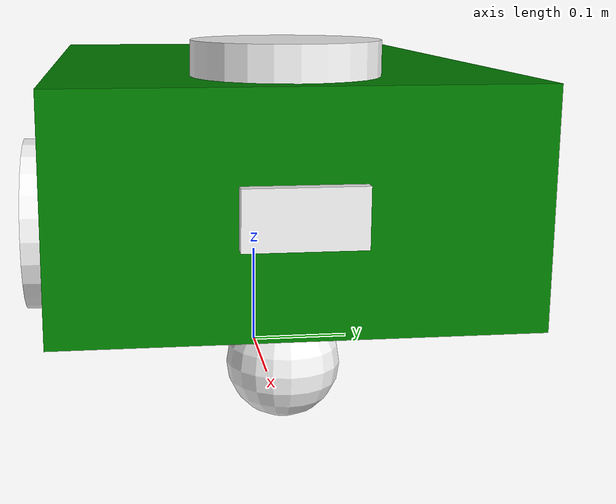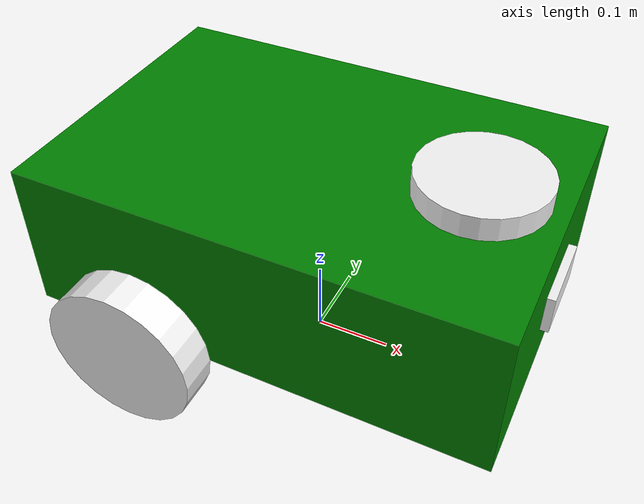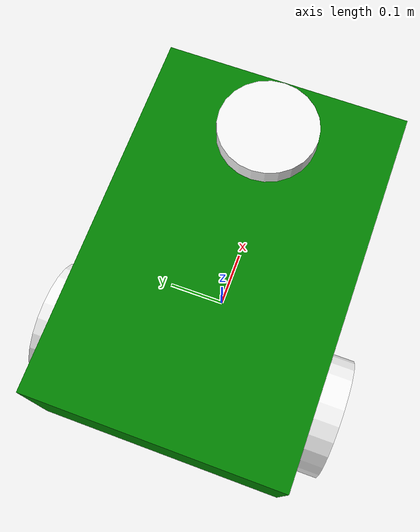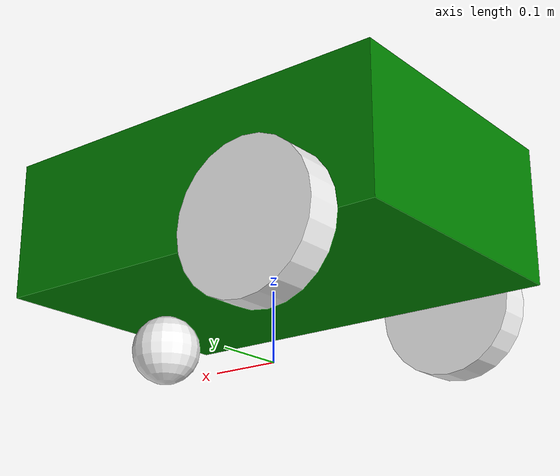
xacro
<?xml version="1.0"?>
<robot name="roam" xmlns:xacro="http://www.ros.org/wiki/xacro">

    <xacro:include filename="common_properties.xacro" />
    <xacro:include filename="mobile_base.xacro" />
    <xacro:include filename="lidar.xacro" />
    <xacro:include filename="camera.xacro" />
    <xacro:include filename="mobile_base_gazebo.xacro" />

</robot>

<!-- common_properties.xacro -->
<robot xmlns:xacro="http://www.ros.org/wiki/xacro">

    <material name="green">
        <color rgba="0 0.5 0 1" />
    </material>

    <material name="grey">
        <color rgba="0.95 0.95 0.95 1" />
    </material>

    <xacro:macro name="box_inertia" params="m x y z o_xyz o_rpy">
        <inertial>
            <mass value="${m}" />
            <origin xyz="${o_xyz}" rpy="${o_rpy}" />
            <inertia ixx="${(m/12) * (y*y + z*z)}" ixy="0" ixz="0"
                     iyy="${(m/12) * (x*x + z*z)}" iyz="0"
                     izz="${(m/12) * (x*x + y*y)}" />
        </inertial>
    </xacro:macro>

    <xacro:macro name="cylinder_inertia" params="m r h o_xyz o_rpy">
        <inertial>
            <mass value="${m}" />
            <origin xyz="${o_xyz}" rpy="${o_rpy}" />
            <inertia ixx="${(m/12) * (3*r*r + h*h)}" ixy="0" ixz="0"
                      iyy="${(m/12) * (3*r*r + h*h)}" iyz="0"
                      izz="${(m*r*r)/2}" />
        </inertial>
    </xacro:macro>

    <xacro:macro name="sphere_inertia" params="m r o_xyz o_rpy" >
        <inertial>
            <mass value="${m}" />
            <origin xyz="${o_xyz}" rpy="${o_rpy}" />
            <inertia ixx="${(2*m*r*r)/5}" ixy="0" ixz="0"
                    iyy="${(2*m*r*r)/5}" iyz="0"
                    izz="${(2*m*r*r)/5}" />
        </inertial>
    </xacro:macro>

</robot>

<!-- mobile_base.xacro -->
<robot xmlns:xacro="http://www.ros.org/wiki/xacro">

    <xacro:property name="base_length" value="0.6" />
    <xacro:property name="base_width" value="0.4" />
    <xacro:property name="base_height" value="0.2" />
    <xacro:property name="wheel_radius" value="0.1" />
    <xacro:property name="wheel_length" value="0.05" />

    <link name="base_footprint" />

    <link name="base_link">
        <visual>
            <geometry>
                <box size="${base_length} ${base_width} ${base_height}" />
            </geometry>
            <origin xyz="0 0 ${base_height / 2.0}" rpy="0 0 0" />
            <material name="green" />
        </visual>

        <collision>
            <geometry>
                <box size="${base_length} ${base_width} ${base_height}" />
            </geometry>
            <origin xyz="0 0 ${base_height / 2.0}" rpy="0 0 0" />
        </collision>

        <xacro:box_inertia m="5.0" x="${base_length}" y="${base_width}" z="${base_height}"
                           o_xyz="0 0 ${base_height / 2.0}" o_rpy="0 0 0" />
    </link>

    <xacro:macro name="wheel_link" params="prefix" >
        <link name="${prefix}_wheel_link" >
            <visual>
                <geometry>
                    <cylinder radius="${wheel_radius}" length="${wheel_length}"/>
                </geometry>
                <origin xyz="0 0 0" rpy="${pi / 2.0} 0 0" />
                <material name="grey" />
            </visual>

            <collision>
                <geometry>
                    <sphere radius="${wheel_radius}" />
                </geometry>
                <origin xyz="0 0 0" rpy="0 0 0" />
            </collision>

            <xacro:cylinder_inertia m="1.0" r="${wheel_radius}" h="${wheel_length}"
                                    o_xyz="0 0 0" o_rpy="${pi / 2.0} 0 0" />
        </link>
    </xacro:macro>

    <xacro:wheel_link prefix="right" />

    <xacro:wheel_link prefix="left" />

    <link name="caster_wheel_link">
        <visual>
            <geometry>
                <sphere radius="${wheel_radius / 2.0}" />
            </geometry>
            <origin xyz="0 0 0" rpy="0 0 0" />
            <material name="grey" />
        </visual>

        <collision>
            <geometry>
                <sphere radius="${wheel_radius / 2.0}" />
            </geometry>
            <origin xyz="0 0 0" rpy="0 0 0" />
        </collision>

        <xacro:sphere_inertia m="0.5" r="${wheel_radius / 2.0}"
                              o_xyz="0 0 0" o_rpy="0 0 0" />
    </link>

    <joint name="base_footprint_base_joint" type="fixed">
        <parent link="base_footprint" />
        <child link="base_link" />
        <origin xyz="0 0 ${wheel_radius}" rpy="0 0 0" />
    </joint>

    <joint name="base_right_wheel_joint" type="continuous">
        <parent link="base_link" />
        <child link="right_wheel_link" />
        <origin xyz="${-base_length / 4.0} ${-((base_width + wheel_length) / 2.0)} 0" rpy="0 0 0" />
        <axis xyz="0 1 0" />
    </joint>

    <joint name="base_left_wheel_joint" type="continuous">
        <parent link="base_link" />
        <child link="left_wheel_link" />
        <origin xyz="${-base_length / 4.0} ${(base_width + wheel_length) / 2.0} 0" rpy="0 0 0" />
        <axis xyz="0 1 0" />
    </joint>

    <joint name="base_caster_wheel_joint" type="fixed">
        <parent link="base_link" />
        <child link="caster_wheel_link" />
        <origin xyz="${base_length / 3.0} 0 ${-wheel_radius / 2.0}" rpy="0 0 0" />
    </joint>

</robot>

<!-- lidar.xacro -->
<robot xmlns:xacro="http://www.ros.org/wiki/xacro">
    <xacro:property name="lidar_frame_radius" value="0.08" />
    <xacro:property name="lidar_frame_length" value="0.03" />

    <link name="lidar_frame">
        <visual>
            <geometry>
                <cylinder radius="${lidar_frame_radius}" length="${lidar_frame_length}" />
            </geometry>
            <origin xyz="0 0 ${lidar_frame_length / 2}" rpy="0 0 0" />
            <material name="grey" />
        </visual>
        <collision>
            <geometry>
                <cylinder radius="${lidar_frame_radius}" length="${lidar_frame_length}" />
            </geometry>
            <origin xyz="0 0 ${lidar_frame_length / 2}" rpy="0 0 0" />
        </collision>
        <xacro:cylinder_inertia m="0.1" r="${lidar_frame_radius}" h="${lidar_frame_length}"
            o_xyz="0 0 ${lidar_frame_length / 2}" o_rpy="0 0 0" />
    </link>

    <joint name="base_link_lidar_frame_joint" type="fixed">
        <parent link="base_link" />
        <child link="lidar_frame" />
        <origin xyz="${base_length / 3} 0 ${base_height}" rpy="0 0 0" />
    </joint>

    <gazebo reference="lidar_frame">
    <sensor name="lidar" type="gpu_lidar">
      <always_on>true</always_on>
      <visualize>true</visualize>
      <update_rate>10</update_rate>
      <topic>scan</topic>
      <gz_frame_id>lidar_link</gz_frame_id>
      <lidar>
        <scan>
          <horizontal>
            <samples>360</samples>
            <min_angle>-3.14</min_angle>
            <max_angle>3.14</max_angle>
          </horizontal>
        </scan>
        <range>
          <min>0.15</min>
          <max>6.0</max>
          <resolution>0.01500</resolution>
        </range>
        <noise>
          <type>gaussian</type>
          <mean>0.0</mean>
          <stddev>0.01</stddev>
        </noise>
      </lidar>
    </sensor>
  </gazebo>
</robot>

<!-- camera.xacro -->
<robot xmlns:xacro="http://www.ros.org/wiki/xacro">
    <xacro:property name="camera_length" value="0.01" />
    <xacro:property name="camera_width" value="0.1" />
    <xacro:property name="camera_height" value="0.05" />

    <link name="camera_link_optical" />

    <link name="camera_link">
        <visual>
            <geometry>
                <box size="${camera_length} ${camera_width} ${camera_height}" />
            </geometry>
            <origin xyz="0 0 0" rpy="0 0 0" />
            <material name="grey" />
        </visual>
        <collision>
            <geometry>
                <box size="${camera_length} ${camera_width} ${camera_height}" />
            </geometry>
            <origin xyz="0 0 0" rpy="0 0 0" />
        </collision>
        <xacro:box_inertia m="0.1" x="${camera_length}" y="${camera_width}" z="${camera_height}"
            o_xyz="0 0 0" o_rpy="0 0 0" />
    </link>

    <joint name="base_camera_joint" type="fixed">
        <parent link="base_link" />
        <child link="camera_link" />
        <origin xyz="${(base_length + camera_length) / 2.0} 0 ${base_height / 2.0}" rpy="0 0 0" />
    </joint>

    <joint name="camera_optical_joint" type="fixed">
        <origin xyz="0 0 0" rpy="${-pi/2} 0 ${-pi/2}" />
        <parent link="camera_link" />
        <child link="camera_link_optical" />
    </joint>

    <gazebo reference="camera_link">
        <sensor name="camera" type="camera">
            <camera>
                <horizontal_fov>1.3962634</horizontal_fov>
                <image>
                    <width>640</width>
                    <height>480</height>
                    <format>R8G8B8</format>
                </image>
                <clip>
                    <near>0.1</near>
                    <far>15</far>
                </clip>
                <noise>
                    <type>gaussian</type>
                    <mean>0.0</mean>
                    <stddev>0.007</stddev>
                </noise>
                <optical_frame_id>camera_link_optical</optical_frame_id>
                <camera_info_topic>camera/camera_info</camera_info_topic>
            </camera>
            <always_on>1</always_on>
            <update_rate>20</update_rate>
            <visualize>true</visualize>
            <topic>camera/image_raw</topic>
        </sensor>
    </gazebo>

</robot>
